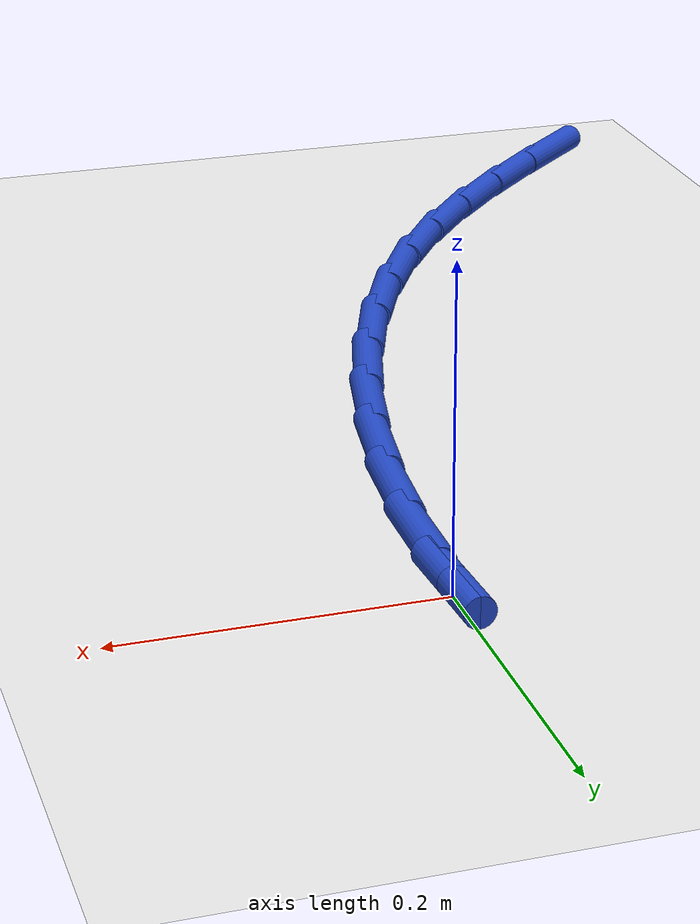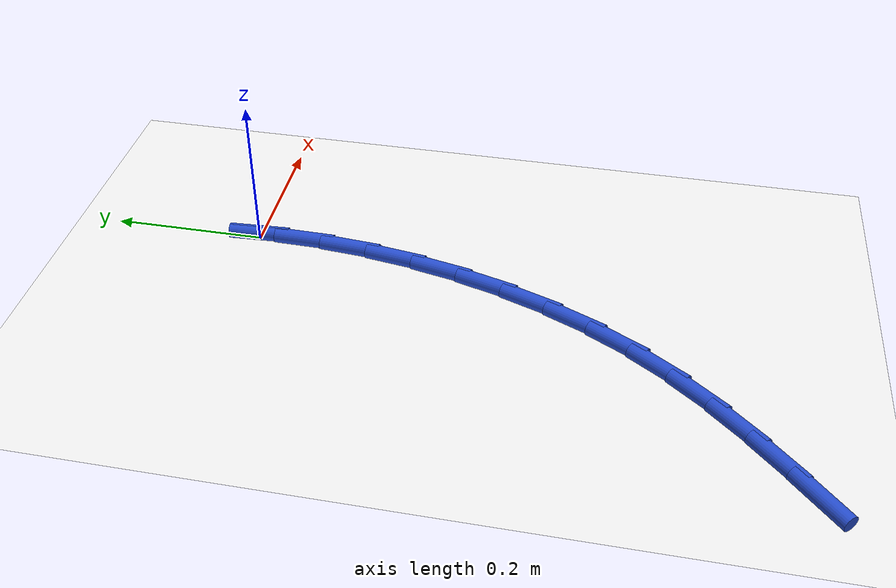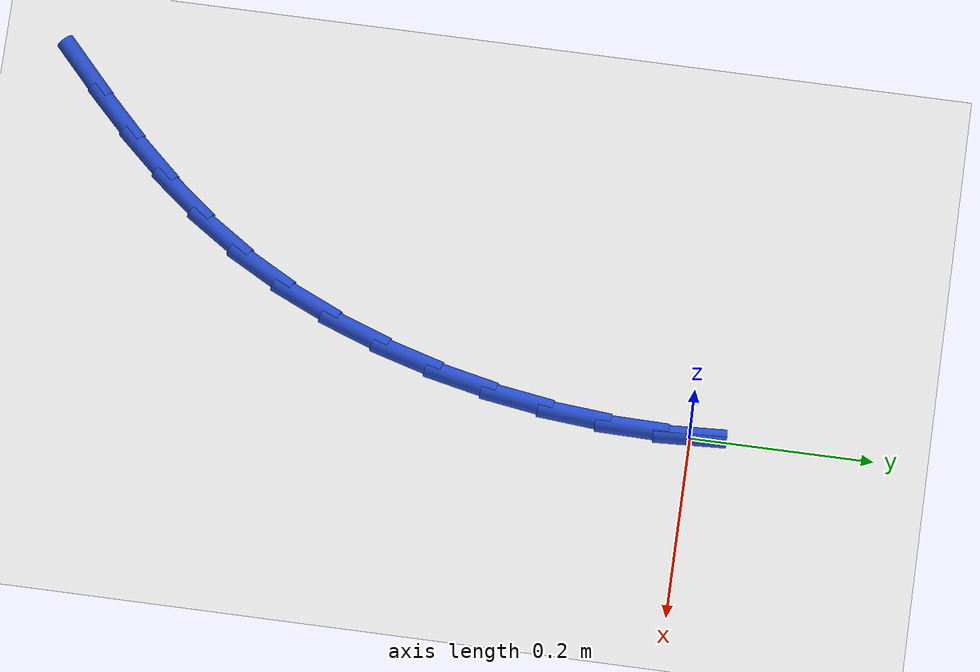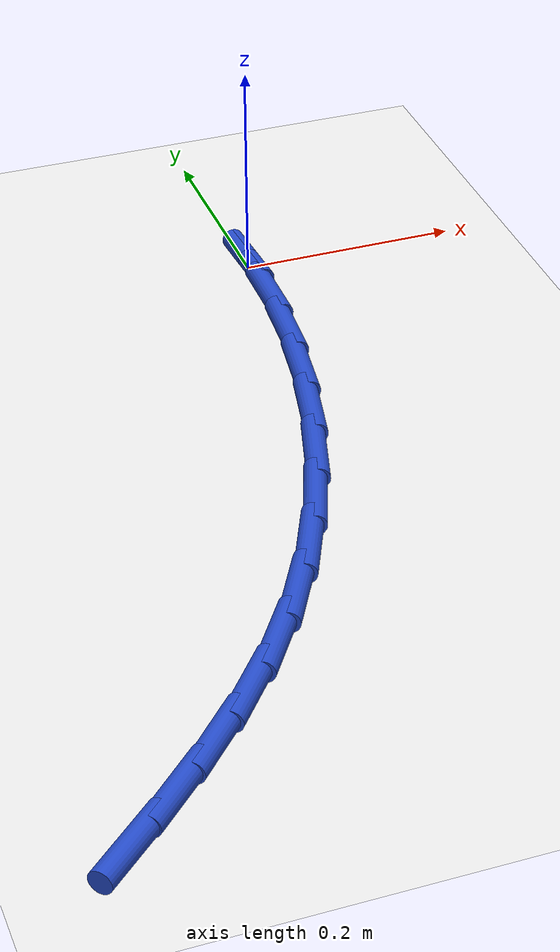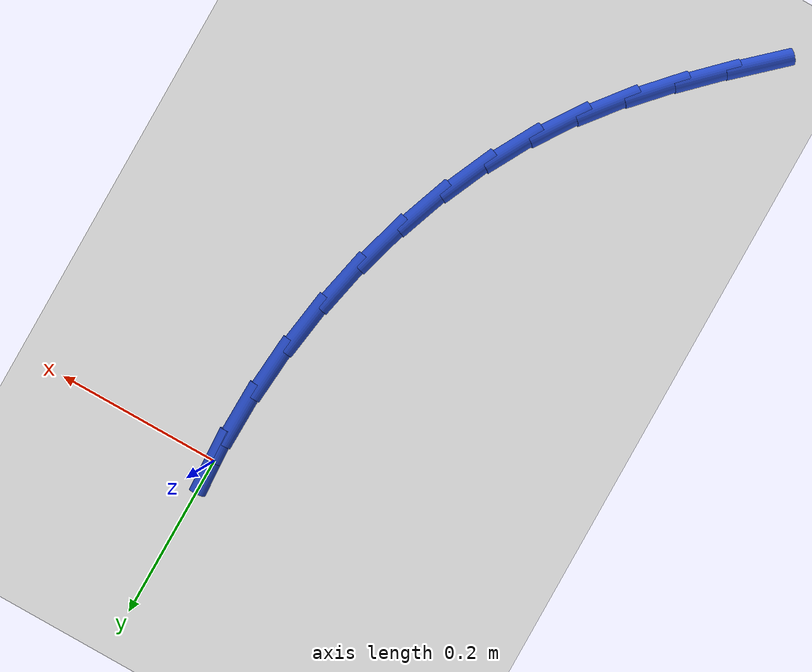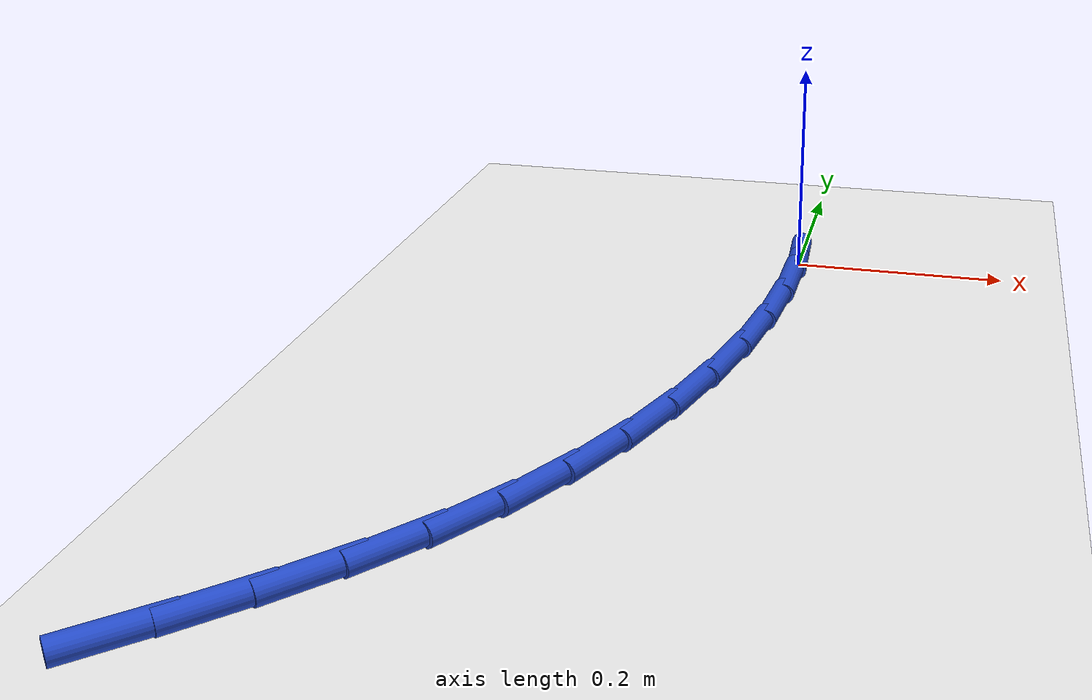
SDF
<sdf version="1.6">
 <world name="default">
  <model name="ground_plane">
   <static>1</static>
   <link name="link">
    <collision name="collision">
     <geometry><plane><normal>0 0 1</normal><size>100 100</size></plane></geometry>
     <surface><friction><ode><mu>100</mu><mu2>50</mu2></ode></friction></surface>
    </collision>
    <visual name="visual">
     <cast_shadows>0</cast_shadows>
     <geometry><plane><normal>0 0 1</normal><size>100 100</size></plane></geometry>
     <material>
      <script><uri>file://media/materials/scripts/gazebo.material</uri><name>Gazebo/WhiteGlow</name></script>
     </material>
    </visual>
   </link>
  </model>
  <model name="line">
   <link name="link_0">
    <pose>0.0 1.3877787807814457e-17 0.01 0 1.57 -1.5192566171240394</pose>
    <collision name="collision">
     <geometry><cylinder><radius>0.01</radius><length>0.08</length></cylinder></geometry>
    </collision>
    <visual name="visual">
     <material>
      <script><name>Gazebo/Blue</name><uri>file://media/materials/scripts/gazebo.material</uri></script>
     </material>
     <geometry><cylinder><radius>0.01</radius><length>0.08</length></cylinder></geometry>
    </visual>
   </link>
   <link name="link_107">
    <pose>-0.32306125030756316 -0.7074980260241067 0.01 0 1.57 0.7401746992339152</pose>
    <collision name="collision">
     <geometry><cylinder><radius>0.01</radius><length>0.08</length></cylinder></geometry>
    </collision>
    <visual name="visual">
     <material>
      <script><name>Gazebo/Blue</name><uri>file://media/materials/scripts/gazebo.material</uri></script>
     </material>
     <geometry><cylinder><radius>0.01</radius><length>0.08</length></cylinder></geometry>
    </visual>
   </link>
   <link name="link_108">
    <pose>-0.27776036030639156 -0.6661197429851665 0.01 0 1.57 0.7748783610804247</pose>
    <collision name="collision">
     <geometry><cylinder><radius>0.01</radius><length>0.08</length></cylinder></geometry>
    </collision>
    <visual name="visual">
     <material>
      <script><name>Gazebo/Blue</name><uri>file://media/materials/scripts/gazebo.material</uri></script>
     </material>
     <geometry><cylinder><radius>0.01</radius><length>0.08</length></cylinder></geometry>
    </visual>
   </link>
   <link name="link_109">
    <pose>-0.2348457005703585 -0.6240986238147072 0.01 0 1.57 0.8269335759417863</pose>
    <collision name="collision">
     <geometry><cylinder><radius>0.01</radius><length>0.08</length></cylinder></geometry>
    </collision>
    <visual name="visual">
     <material>
      <script><name>Gazebo/Blue</name><uri>file://media/materials/scripts/gazebo.material</uri></script>
     </material>
     <geometry><cylinder><radius>0.01</radius><length>0.08</length></cylinder></geometry>
    </visual>
   </link>
   <link name="link_110">
    <pose>-0.1947062658457789 -0.5804781862103188 0.01 0 1.57 0.8956036169683251</pose>
    <collision name="collision">
     <geometry><cylinder><radius>0.01</radius><length>0.08</length></cylinder></geometry>
    </collision>
    <visual name="visual">
     <material>
      <script><name>Gazebo/Blue</name><uri>file://media/materials/scripts/gazebo.material</uri></script>
     </material>
     <geometry><cylinder><radius>0.01</radius><length>0.08</length></cylinder></geometry>
    </visual>
   </link>
   <link name="link_111">
    <pose>-0.15773105087896863 -0.5343019478695925 0.01 0 1.57 0.9785870896285294</pose>
    <collision name="collision">
     <geometry><cylinder><radius>0.01</radius><length>0.08</length></cylinder></geometry>
    </collision>
    <visual name="visual">
     <material>
      <script><name>Gazebo/Blue</name><uri>file://media/materials/scripts/gazebo.material</uri></script>
     </material>
     <geometry><cylinder><radius>0.01</radius><length>0.08</length></cylinder></geometry>
    </visual>
   </link>
   <link name="link_112">
    <pose>-0.12430754614885156 -0.48462077960055183 0.01 0 1.57 1.0660132444202703</pose>
    <collision name="collision">
     <geometry><cylinder><radius>0.01</radius><length>0.08</length></cylinder></geometry>
    </collision>
    <visual name="visual">
     <material>
      <script><name>Gazebo/Blue</name><uri>file://media/materials/scripts/gazebo.material</uri></script>
     </material>
     <geometry><cylinder><radius>0.01</radius><length>0.08</length></cylinder></geometry>
    </visual>
   </link>
   <link name="link_113">
    <pose>-0.09470786346201045 -0.43104954244610627 0.01 0 1.57 1.1465282373370413</pose>
    <collision name="collision">
     <geometry><cylinder><radius>0.01</radius><length>0.08</length></cylinder></geometry>
    </collision>
    <visual name="visual">
     <material>
      <script><name>Gazebo/Blue</name><uri>file://media/materials/scripts/gazebo.material</uri></script>
     </material>
     <geometry><cylinder><radius>0.01</radius><length>0.08</length></cylinder></geometry>
    </visual>
   </link>
   <link name="link_114">
    <pose>-0.06900910677612163 -0.3741563284083641 0.01 0 1.57 1.220792879868721</pose>
    <collision name="collision">
     <geometry><cylinder><radius>0.01</radius><length>0.08</length></cylinder></geometry>
    </collision>
    <visual name="visual">
     <material>
      <script><name>Gazebo/Blue</name><uri>file://media/materials/scripts/gazebo.material</uri></script>
     </material>
     <geometry><cylinder><radius>0.01</radius><length>0.08</length></cylinder></geometry>
    </visual>
   </link>
   <link name="link_115">
    <pose>-0.04726956157902794 -0.31460121731531226 0.01 0 1.57 1.29047995381568</pose>
    <collision name="collision">
     <geometry><cylinder><radius>0.01</radius><length>0.08</length></cylinder></geometry>
    </collision>
    <visual name="visual">
     <material>
      <script><name>Gazebo/Blue</name><uri>file://media/materials/scripts/gazebo.material</uri></script>
     </material>
     <geometry><cylinder><radius>0.01</radius><length>0.08</length></cylinder></geometry>
    </visual>
   </link>
   <link name="link_116">
    <pose>-0.02954751335857304 -0.2530442889949402 0.01 0 1.57 1.3571509946793499</pose>
    <collision name="collision">
     <geometry><cylinder><radius>0.01</radius><length>0.08</length></cylinder></geometry>
    </collision>
    <visual name="visual">
     <material>
      <script><name>Gazebo/Blue</name><uri>file://media/materials/scripts/gazebo.material</uri></script>
     </material>
     <geometry><cylinder><radius>0.01</radius><length>0.08</length></cylinder></geometry>
    </visual>
   </link>
   <link name="link_117">
    <pose>-0.015901247602599682 -0.1901456232752351 0.01 0 1.57 1.4222886554068022</pose>
    <collision name="collision">
     <geometry><cylinder><radius>0.01</radius><length>0.08</length></cylinder></geometry>
    </collision>
    <visual name="visual">
     <material>
      <script><name>Gazebo/Blue</name><uri>file://media/materials/scripts/gazebo.material</uri></script>
     </material>
     <geometry><cylinder><radius>0.01</radius><length>0.08</length></cylinder></geometry>
    </visual>
   </link>
   <link name="link_118">
    <pose>-0.006389049798951 -0.12656529998418498 0.01 0 1.57 1.4873477192288127</pose>
    <collision name="collision">
     <geometry><cylinder><radius>0.01</radius><length>0.08</length></cylinder></geometry>
    </collision>
    <visual name="visual">
     <material>
      <script><name>Gazebo/Blue</name><uri>file://media/materials/scripts/gazebo.material</uri></script>
     </material>
     <geometry><cylinder><radius>0.01</radius><length>0.08</length></cylinder></geometry>
    </visual>
   </link>
   <link name="link_119">
    <pose>-0.0010692054354700196 -0.0629633989497768 0.01 0 1.57 1.5538165782988094</pose>
    <collision name="collision">
     <geometry><cylinder><radius>0.01</radius><length>0.08</length></cylinder></geometry>
    </collision>
    <visual name="visual">
     <material>
      <script><name>Gazebo/Blue</name><uri>file://media/materials/scripts/gazebo.material</uri></script>
     </material>
     <geometry><cylinder><radius>0.01</radius><length>0.08</length></cylinder></geometry>
    </visual>
   </link>
   <link name="link_120">
    <pose>-6.938893903907228e-18 -1.8041124150158794e-16 0.01 0 1.57 -1.5183070255940645</pose>
    <collision name="collision">
     <geometry><cylinder><radius>0.01</radius><length>0.08</length></cylinder></geometry>
    </collision>
    <visual name="visual">
     <material>
      <script><name>Gazebo/Blue</name><uri>file://media/materials/scripts/gazebo.material</uri></script>
     </material>
     <geometry><cylinder><radius>0.01</radius><length>0.08</length></cylinder></geometry>
    </visual>
   </link>
  </model>
 </world>
</sdf>
